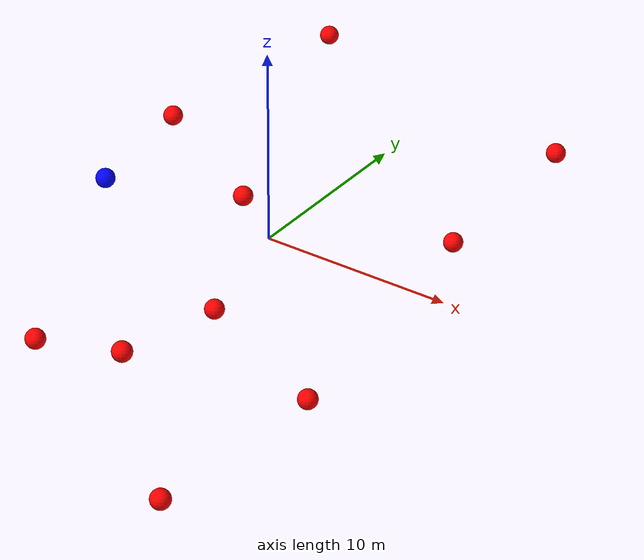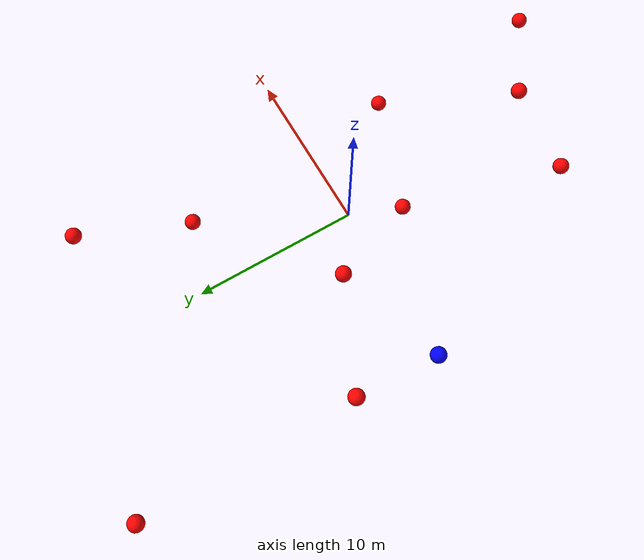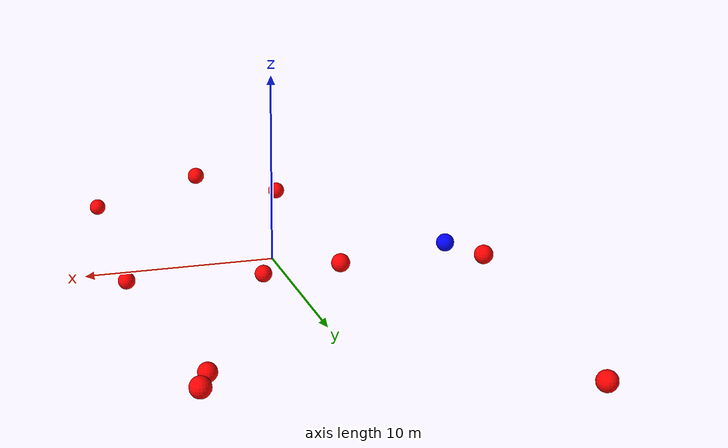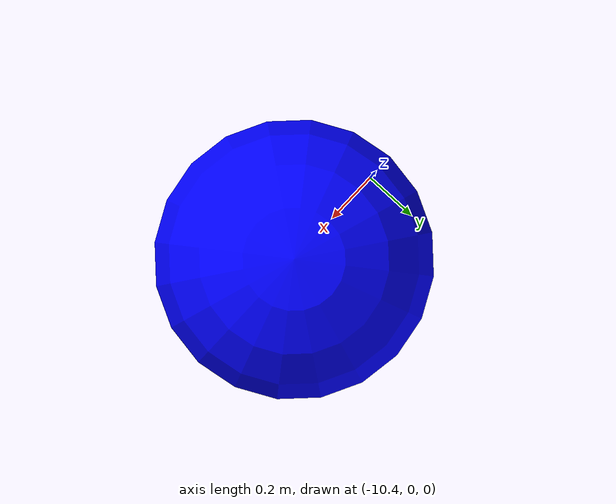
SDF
<?xml version="1.0" ?>
<sdf version="1.8">
    <world name="3d_world">
        <physics name="1ms" type="ode">
            <max_step_size>0.001</max_step_size>
            <real_time_factor>1.0</real_time_factor>
            <real_time_update_rate>1000.0</real_time_update_rate>
        </physics>
        <gravity>0 0 0</gravity>

        <plugin
            filename="gz-sim-physics-system"
            name="gz::sim::v8::systems::Physics">
        </plugin>
        <plugin
            filename="libignition-gazebo-user-commands-system.so"
            name="ignition::gazebo::systems::UserCommands">
        </plugin>
        <plugin
            filename="gz-sim-scene-broadcaster-system"
            name="gz::sim::systems::SceneBroadcaster">
        </plugin>
        <plugin
            filename="gz-sim-sensors-system"
            name="gz::sim::systems::Sensors">
            <render_engine>ogre2</render_engine>
        </plugin>

        <light type="directional" name="sun">
            <cast_shadows>true</cast_shadows>
            <pose>0 0 10 0 0 0</pose>
            <diffuse>0.8 0.8 0.8 1</diffuse>
            <specular>0.2 0.2 0.2 1</specular>
            <attenuation>
                <range>1000</range>
                <constant>0.9</constant>
                <linear>0.01</linear>
                <quadratic>0.001</quadratic>
            </attenuation>
            <direction>-0.5 0.1 -0.9</direction>
        </light>

        <!-- AGENTE -->
        <model name='agente' canonical_link='chassis'>
            <pose relative_to='world'>-10.0 0 0.0 0 0 0</pose>
            <link name='chassis'>
                <pose relative_to='__model__'>0.0 0 0.0 0 0 0</pose>
                <inertial>
                    <mass>1.14395</mass>
                    <inertia>
                        <ixx>0.095329</ixx>
                        <ixy>0</ixy>
                        <ixz>0</ixz>
                        <iyy>0.381317</iyy>
                        <iyz>0</iyz>
                        <izz>0.476646</izz>
                    </inertia>
                </inertial>
                <visual name='visual'>
                    <geometry>
                        <sphere>
                            <radius>0.5</radius>
                        </sphere>
                    </geometry>
                    <material>
                        <ambient>0.0 0.0 1.0 1</ambient>
                        <diffuse>0.0 0.0 1.0 1</diffuse>
                        <specular>0.0 0.0 1.0 1</specular>
                    </material>
                </visual>
                <collision name='collision'>
                    <geometry>
                        <sphere>
                            <radius>0.5</radius>
                        </sphere>
                    </geometry>
                </collision>
                <enable_gravity>false</enable_gravity>
            </link>

            <link name='lidar_link'>
                <pose relative_to='chassis'>0.0 0 0.1 0 0 0</pose>
                <inertial>
                    <mass>0.1</mass>
                    <inertia>
                        <ixx>0.000166667</ixx>
                        <iyy>0.000166667</iyy>
                        <izz>0.000166667</izz>
                    </inertia>
                </inertial>
                <collision name='collision'>
                    <geometry>
                        <cylinder>
                            <radius>0.05</radius>
                            <length>0.1</length>
                        </cylinder>
                    </geometry>
                </collision>
                <visual name='visual'>
                    <geometry>
                        <cylinder>
                            <radius>0.05</radius>
                            <length>0.1</length>
                        </cylinder>
                    </geometry>
                    <material>
                        <ambient>0.0 1.0 0.0 1</ambient>
                        <diffuse>0.0 1.0 0.0 1</diffuse>
                        <specular>0.0 1.0 0.0 1</specular>
                    </material>
                </visual>
                <sensor name="lidar" type="gpu_lidar">
                    <topic>scan</topic>
                    <update_rate>10</update_rate>
                    <lidar>
                        <scan>
                            <horizontal>
                                <samples>5000</samples>
                                <resolution>1</resolution>
                                <min_angle>-3.14159</min_angle>
                                <max_angle>3.14159</max_angle>
                            </horizontal>
                        </scan>
                        <range>
                            <min>0.1</min>
                            <max>10.0</max>
                            <resolution>0.01</resolution>
                        </range>
                    </lidar>
                    <visualize>true</visualize>
                    <always_on>true</always_on>
                    <update_rate>10</update_rate>
                    <pose_frame>lidar</pose_frame>
                </sensor>
                <enable_gravity>false</enable_gravity>
            </link>

            <joint name="lidar_joint" type="fixed">
                <parent>chassis</parent>
                <child>lidar_link</child>
            </joint>

            <plugin
                filename="ignition-gazebo-joint-state-publisher-system"
                name="ignition::gazebo::systems::JointStatePublisher">
            </plugin>
            <plugin
                filename="ignition-gazebo-odometry-publisher-system"
                name="ignition::gazebo::systems::OdometryPublisher">
                <dimensions>3</dimensions>
            </plugin>
            <plugin
                filename="ignition-gazebo-velocity-control-system"
                name="ignition::gazebo::systems::VelocityControl">
                <initial_linear>0.0 0 0</initial_linear>
                <initial_angular>0 0 0.0</initial_angular>
            </plugin>
            <plugin
                filename="libignition-gazebo-pose-publisher-system.so"
                name="ignition::gazebo::systems::PosePublisher">
                <topic>/agente/pose</topic>
                <frame_id>agente</frame_id>
                <update_rate>30</update_rate>
            </plugin>
        </model>

        <!-- OBSTACLE 1 -->
        <model name='obstacle_1' canonical_link='obstacle'>
            <static>false</static>
            <pose relative_to='world'>5.36 8.13 -2.41 0 0 0</pose>
            <link name='obstacle'>
                <pose relative_to='__model__'>0.0 0 0.0 0 0 0</pose>
                <visual name='visual'>
                    <geometry>
                        <sphere>
                            <radius>0.50</radius>
                        </sphere>
                    </geometry>
                    <material>
                        <ambient>1.0 0.0 0.0 1</ambient>
                        <diffuse>1.0 0.0 0.0 1</diffuse>
                        <specular>1.0 0.0 0.0 1</specular>
                    </material>
                </visual>
                <collision name='collision'>
                    <geometry>
                        <sphere>
                            <radius>0.50</radius>
                        </sphere>
                    </geometry>
                </collision>
                <enable_gravity>false</enable_gravity>
            </link>

            <plugin
                filename="ignition-gazebo-velocity-control-system"
                name="ignition::gazebo::systems::VelocityControl">
                <initial_linear>-1.16 -1.56 0.46</initial_linear>
                <initial_angular>0 0 0</initial_angular>
            </plugin>

            <plugin
                filename="ignition-gazebo-odometry-publisher-system"
                name="ignition::gazebo::systems::OdometryPublisher">
                <dimensions>3</dimensions>
            </plugin>
        </model>

        <!-- OBSTACLE 2 -->
        <model name='obstacle_2' canonical_link='obstacle'>
            <static>false</static>
            <pose relative_to='world'>6.94 -6.62 -2.90 0 0 0</pose>
            <link name='obstacle'>
                <pose relative_to='__model__'>0.0 0 0.0 0 0 0</pose>
                <visual name='visual'>
                    <geometry>
                        <sphere>
                            <radius>0.50</radius>
                        </sphere>
                    </geometry>
                    <material>
                        <ambient>1.0 0.0 0.0 1</ambient>
                        <diffuse>1.0 0.0 0.0 1</diffuse>
                        <specular>1.0 0.0 0.0 1</specular>
                    </material>
                </visual>
                <collision name='collision'>
                    <geometry>
                        <sphere>
                            <radius>0.50</radius>
                        </sphere>
                    </geometry>
                </collision>
                <enable_gravity>false</enable_gravity>
            </link>

            <plugin
                filename="ignition-gazebo-velocity-control-system"
                name="ignition::gazebo::systems::VelocityControl">
                <initial_linear>-0.60 1.21 0.53</initial_linear>
                <initial_angular>0 0 0</initial_angular>
            </plugin>

            <plugin
                filename="ignition-gazebo-odometry-publisher-system"
                name="ignition::gazebo::systems::OdometryPublisher">
                <dimensions>3</dimensions>
            </plugin>
        </model>

        <!-- OBSTACLE 3 -->
        <model name='obstacle_3' canonical_link='obstacle'>
            <static>false</static>
            <pose relative_to='world'>1.41 -13.18 1.19 0 0 0</pose>
            <link name='obstacle'>
                <pose relative_to='__model__'>0.0 0 0.0 0 0 0</pose>
                <visual name='visual'>
                    <geometry>
                        <sphere>
                            <radius>0.50</radius>
                        </sphere>
                    </geometry>
                    <material>
                        <ambient>1.0 0.0 0.0 1</ambient>
                        <diffuse>1.0 0.0 0.0 1</diffuse>
                        <specular>1.0 0.0 0.0 1</specular>
                    </material>
                </visual>
                <collision name='collision'>
                    <geometry>
                        <sphere>
                            <radius>0.50</radius>
                        </sphere>
                    </geometry>
                </collision>
                <enable_gravity>false</enable_gravity>
            </link>

            <plugin
                filename="ignition-gazebo-velocity-control-system"
                name="ignition::gazebo::systems::VelocityControl">
                <initial_linear>-0.53 1.92 -0.17</initial_linear>
                <initial_angular>0 0 0</initial_angular>
            </plugin>

            <plugin
                filename="ignition-gazebo-odometry-publisher-system"
                name="ignition::gazebo::systems::OdometryPublisher">
                <dimensions>3</dimensions>
            </plugin>
        </model>

        <!-- OBSTACLE 4 -->
        <model name='obstacle_4' canonical_link='obstacle'>
            <static>false</static>
            <pose relative_to='world'>7.06 -17.86 -1.76 0 0 0</pose>
            <link name='obstacle'>
                <pose relative_to='__model__'>0.0 0 0.0 0 0 0</pose>
                <visual name='visual'>
                    <geometry>
                        <sphere>
                            <radius>0.50</radius>
                        </sphere>
                    </geometry>
                    <material>
                        <ambient>1.0 0.0 0.0 1</ambient>
                        <diffuse>1.0 0.0 0.0 1</diffuse>
                        <specular>1.0 0.0 0.0 1</specular>
                    </material>
                </visual>
                <collision name='collision'>
                    <geometry>
                        <sphere>
                            <radius>0.50</radius>
                        </sphere>
                    </geometry>
                </collision>
                <enable_gravity>false</enable_gravity>
            </link>

            <plugin
                filename="ignition-gazebo-velocity-control-system"
                name="ignition::gazebo::systems::VelocityControl">
                <initial_linear>-0.33 1.96 0.19</initial_linear>
                <initial_angular>0 0 0</initial_angular>
            </plugin>

            <plugin
                filename="ignition-gazebo-odometry-publisher-system"
                name="ignition::gazebo::systems::OdometryPublisher">
                <dimensions>3</dimensions>
            </plugin>
        </model>

        <!-- OBSTACLE 5 -->
        <model name='obstacle_5' canonical_link='obstacle'>
            <static>false</static>
            <pose relative_to='world'>-0.49 -3.79 -2.22 0 0 0</pose>
            <link name='obstacle'>
                <pose relative_to='__model__'>0.0 0 0.0 0 0 0</pose>
                <visual name='visual'>
                    <geometry>
                        <sphere>
                            <radius>0.50</radius>
                        </sphere>
                    </geometry>
                    <material>
                        <ambient>1.0 0.0 0.0 1</ambient>
                        <diffuse>1.0 0.0 0.0 1</diffuse>
                        <specular>1.0 0.0 0.0 1</specular>
                    </material>
                </visual>
                <collision name='collision'>
                    <geometry>
                        <sphere>
                            <radius>0.50</radius>
                        </sphere>
                    </geometry>
                </collision>
                <enable_gravity>false</enable_gravity>
            </link>

            <plugin
                filename="ignition-gazebo-velocity-control-system"
                name="ignition::gazebo::systems::VelocityControl">
                <initial_linear>-0.09 1.03 0.60</initial_linear>
                <initial_angular>0 0 0</initial_angular>
            </plugin>

            <plugin
                filename="ignition-gazebo-odometry-publisher-system"
                name="ignition::gazebo::systems::OdometryPublisher">
                <dimensions>3</dimensions>
            </plugin>
        </model>

        <!-- OBSTACLE 6 -->
        <model name='obstacle_6' canonical_link='obstacle'>
            <static>false</static>
            <pose relative_to='world'>-9.58 18.90 0.00 0 0 0</pose>
            <link name='obstacle'>
                <pose relative_to='__model__'>0.0 0 0.0 0 0 0</pose>
                <visual name='visual'>
                    <geometry>
                        <sphere>
                            <radius>0.50</radius>
                        </sphere>
                    </geometry>
                    <material>
                        <ambient>1.0 0.0 0.0 1</ambient>
                        <diffuse>1.0 0.0 0.0 1</diffuse>
                        <specular>1.0 0.0 0.0 1</specular>
                    </material>
                </visual>
                <collision name='collision'>
                    <geometry>
                        <sphere>
                            <radius>0.50</radius>
                        </sphere>
                    </geometry>
                </collision>
                <enable_gravity>false</enable_gravity>
            </link>

            <plugin
                filename="ignition-gazebo-velocity-control-system"
                name="ignition::gazebo::systems::VelocityControl">
                <initial_linear>1.15 -1.63 -0.00</initial_linear>
                <initial_angular>0 0 0</initial_angular>
            </plugin>

            <plugin
                filename="ignition-gazebo-odometry-publisher-system"
                name="ignition::gazebo::systems::OdometryPublisher">
                <dimensions>3</dimensions>
            </plugin>
        </model>

        <!-- OBSTACLE 7 -->
        <model name='obstacle_7' canonical_link='obstacle'>
            <static>false</static>
            <pose relative_to='world'>-9.87 5.42 1.12 0 0 0</pose>
            <link name='obstacle'>
                <pose relative_to='__model__'>0.0 0 0.0 0 0 0</pose>
                <visual name='visual'>
                    <geometry>
                        <sphere>
                            <radius>0.50</radius>
                        </sphere>
                    </geometry>
                    <material>
                        <ambient>1.0 0.0 0.0 1</ambient>
                        <diffuse>1.0 0.0 0.0 1</diffuse>
                        <specular>1.0 0.0 0.0 1</specular>
                    </material>
                </visual>
                <collision name='collision'>
                    <geometry>
                        <sphere>
                            <radius>0.50</radius>
                        </sphere>
                    </geometry>
                </collision>
                <enable_gravity>false</enable_gravity>
            </link>

            <plugin
                filename="ignition-gazebo-velocity-control-system"
                name="ignition::gazebo::systems::VelocityControl">
                <initial_linear>1.56 -1.23 -0.25</initial_linear>
                <initial_angular>0 0 0</initial_angular>
            </plugin>

            <plugin
                filename="ignition-gazebo-odometry-publisher-system"
                name="ignition::gazebo::systems::OdometryPublisher">
                <dimensions>3</dimensions>
            </plugin>
        </model>

        <!-- OBSTACLE 8 -->
        <model name='obstacle_8' canonical_link='obstacle'>
            <static>false</static>
            <pose relative_to='world'>-3.77 -13.06 -0.15 0 0 0</pose>
            <link name='obstacle'>
                <pose relative_to='__model__'>0.0 0 0.0 0 0 0</pose>
                <visual name='visual'>
                    <geometry>
                        <sphere>
                            <radius>0.50</radius>
                        </sphere>
                    </geometry>
                    <material>
                        <ambient>1.0 0.0 0.0 1</ambient>
                        <diffuse>1.0 0.0 0.0 1</diffuse>
                        <specular>1.0 0.0 0.0 1</specular>
                    </material>
                </visual>
                <collision name='collision'>
                    <geometry>
                        <sphere>
                            <radius>0.50</radius>
                        </sphere>
                    </geometry>
                </collision>
                <enable_gravity>false</enable_gravity>
            </link>

            <plugin
                filename="ignition-gazebo-velocity-control-system"
                name="ignition::gazebo::systems::VelocityControl">
                <initial_linear>1.30 1.52 0.02</initial_linear>
                <initial_angular>0 0 0</initial_angular>
            </plugin>

            <plugin
                filename="ignition-gazebo-odometry-publisher-system"
                name="ignition::gazebo::systems::OdometryPublisher">
                <dimensions>3</dimensions>
            </plugin>
        </model>

        <!-- OBSTACLE 9 -->
        <model name='obstacle_9' canonical_link='obstacle'>
            <static>false</static>
            <pose relative_to='world'>-3.15 2.22 0.23 0 0 0</pose>
            <link name='obstacle'>
                <pose relative_to='__model__'>0.0 0 0.0 0 0 0</pose>
                <visual name='visual'>
                    <geometry>
                        <sphere>
                            <radius>0.50</radius>
                        </sphere>
                    </geometry>
                    <material>
                        <ambient>1.0 0.0 0.0 1</ambient>
                        <diffuse>1.0 0.0 0.0 1</diffuse>
                        <specular>1.0 0.0 0.0 1</specular>
                    </material>
                </visual>
                <collision name='collision'>
                    <geometry>
                        <sphere>
                            <radius>0.50</radius>
                        </sphere>
                    </geometry>
                </collision>
                <enable_gravity>false</enable_gravity>
            </link>

            <plugin
                filename="ignition-gazebo-velocity-control-system"
                name="ignition::gazebo::systems::VelocityControl">
                <initial_linear>1.21 -0.42 -0.04</initial_linear>
                <initial_angular>0 0 0</initial_angular>
            </plugin>

            <plugin
                filename="ignition-gazebo-odometry-publisher-system"
                name="ignition::gazebo::systems::OdometryPublisher">
                <dimensions>3</dimensions>
            </plugin>
        </model>

        <!-- OBSTACLE 10 -->
        <model name='obstacle_10' canonical_link='obstacle'>
            <static>false</static>
            <pose relative_to='world'>7.08 14.88 0.07 0 0 0</pose>
            <link name='obstacle'>
                <pose relative_to='__model__'>0.0 0 0.0 0 0 0</pose>
                <visual name='visual'>
                    <geometry>
                        <sphere>
                            <radius>0.50</radius>
                        </sphere>
                    </geometry>
                    <material>
                        <ambient>1.0 0.0 0.0 1</ambient>
                        <diffuse>1.0 0.0 0.0 1</diffuse>
                        <specular>1.0 0.0 0.0 1</specular>
                    </material>
                </visual>
                <collision name='collision'>
                    <geometry>
                        <sphere>
                            <radius>0.50</radius>
                        </sphere>
                    </geometry>
                </collision>
                <enable_gravity>false</enable_gravity>
            </link>

            <plugin
                filename="ignition-gazebo-velocity-control-system"
                name="ignition::gazebo::systems::VelocityControl">
                <initial_linear>-0.12 -2.00 -0.01</initial_linear>
                <initial_angular>0 0 0</initial_angular>
            </plugin>

            <plugin
                filename="ignition-gazebo-odometry-publisher-system"
                name="ignition::gazebo::systems::OdometryPublisher">
                <dimensions>3</dimensions>
            </plugin>
        </model>

    </world>
</sdf>
